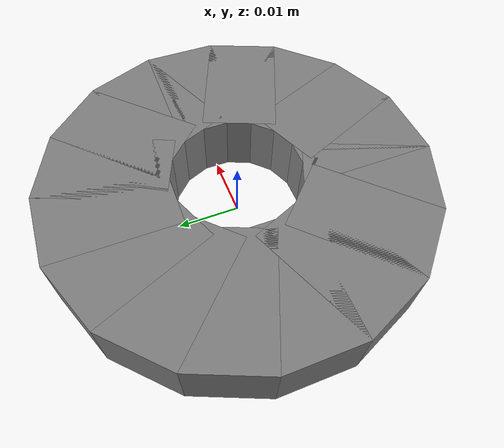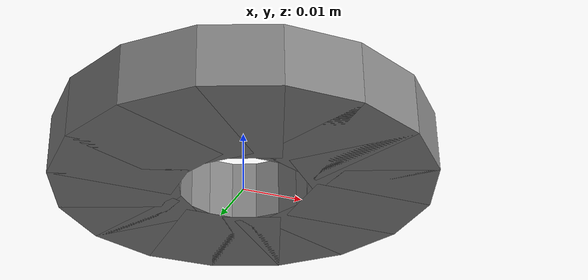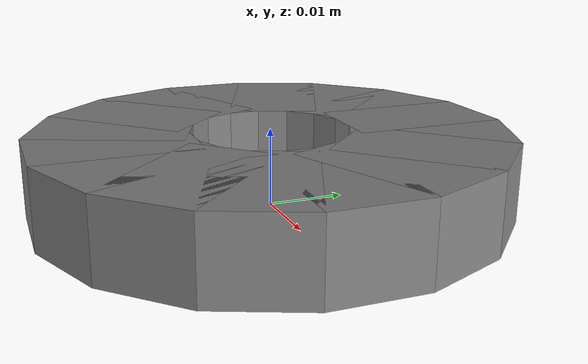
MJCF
<?xml version="1.0" ?>
<mujoco>
	<worldbody>
		<body>
			<geom euler="0 0 90.0" pos="0.019999999999999997 0.0 0.005" size="0.00596737102138974 0.009999999999999998 0.005" type="box"/>
			<geom euler="0 0 112.5" pos="0.018477590650225733 0.007653668647301794 0.005" size="0.00596737102138974 0.009999999999999998 0.005" type="box"/>
			<geom euler="0 0 135.0" pos="0.014142135623730949 0.014142135623730947 0.005" size="0.00596737102138974 0.009999999999999998 0.005" type="box"/>
			<geom euler="0 0 157.5" pos="0.007653668647301795 0.018477590650225733 0.005" size="0.00596737102138974 0.009999999999999998 0.005" type="box"/>
			<geom euler="0 0 180.0" pos="1.224646799147353e-18 0.019999999999999997 0.005" size="0.00596737102138974 0.009999999999999998 0.005" type="box"/>
			<geom euler="0 0 202.5" pos="-0.0076536686473017935 0.018477590650225733 0.005" size="0.00596737102138974 0.009999999999999998 0.005" type="box"/>
			<geom euler="0 0 225.0" pos="-0.014142135623730947 0.014142135623730949 0.005" size="0.00596737102138974 0.009999999999999998 0.005" type="box"/>
			<geom euler="0 0 247.5" pos="-0.018477590650225733 0.007653668647301795 0.005" size="0.00596737102138974 0.009999999999999998 0.005" type="box"/>
			<geom euler="0 0 270.0" pos="-0.019999999999999997 2.449293598294706e-18 0.005" size="0.00596737102138974 0.009999999999999998 0.005" type="box"/>
			<geom euler="0 0 292.5" pos="-0.018477590650225733 -0.007653668647301793 0.005" size="0.00596737102138974 0.009999999999999998 0.005" type="box"/>
			<geom euler="0 0 315.0" pos="-0.01414213562373095 -0.014142135623730947 0.005" size="0.00596737102138974 0.009999999999999998 0.005" type="box"/>
			<geom euler="0 0 337.5" pos="-0.007653668647301806 -0.018477590650225726 0.005" size="0.00596737102138974 0.009999999999999998 0.005" type="box"/>
			<geom euler="0 0 360.0" pos="-3.673940397442059e-18 -0.019999999999999997 0.005" size="0.00596737102138974 0.009999999999999998 0.005" type="box"/>
			<geom euler="0 0 382.5" pos="0.007653668647301799 -0.01847759065022573 0.005" size="0.00596737102138974 0.009999999999999998 0.005" type="box"/>
			<geom euler="0 0 405.0" pos="0.014142135623730947 -0.01414213562373095 0.005" size="0.00596737102138974 0.009999999999999998 0.005" type="box"/>
			<geom euler="0 0 427.5" pos="0.018477590650225726 -0.0076536686473018065 0.005" size="0.00596737102138974 0.009999999999999998 0.005" type="box"/>
		</body>
	</worldbody>
</mujoco>
